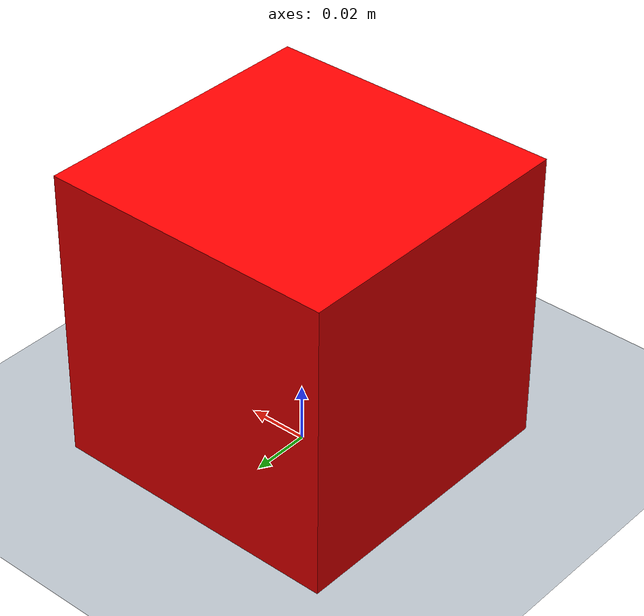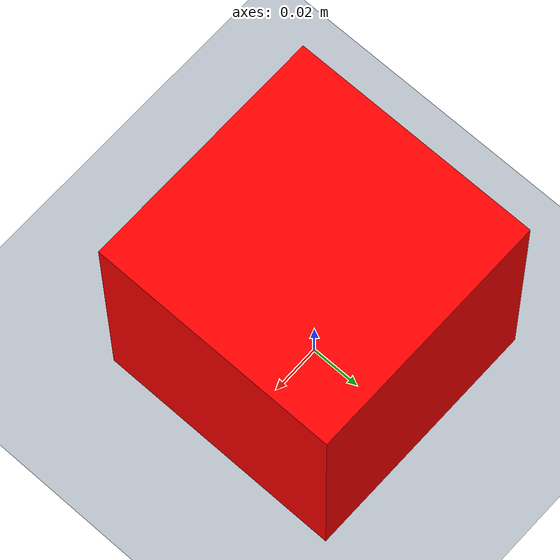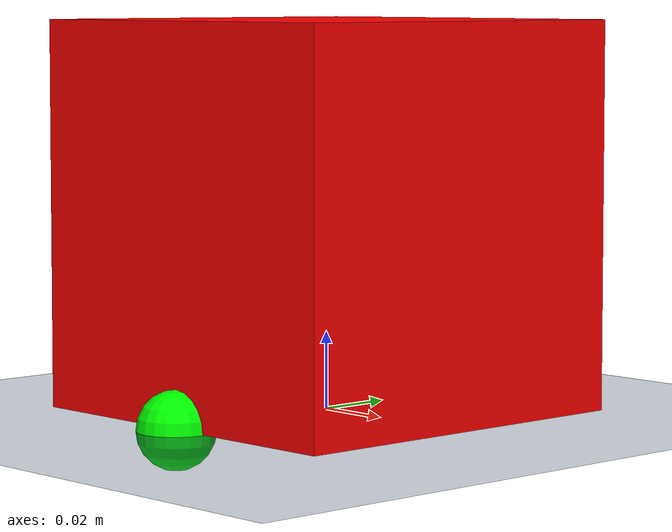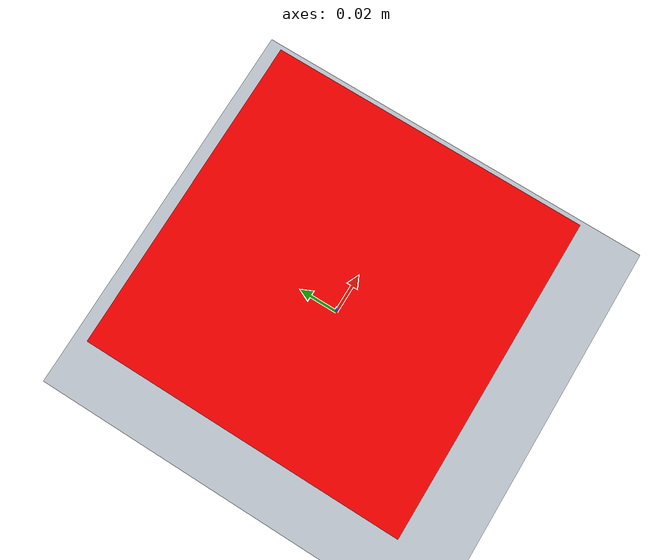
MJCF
<mujoco>
  <asset>
    <texture name="grid" type="2d" builtin="checker" rgb1=".1 .2 .3"
     rgb2=".2 .3 .4" width="300" height="300" mark="none"/>
    <material name="grid" texture="grid" texrepeat="6 6"
     texuniform="true" reflectance=".1"/>
     <material name="wall" rgba='.5 .5 .5 1'/>
  </asset>

  <worldbody>
    <light name="light" pos="-.2 0 1"/>
    <geom name="ground" type="plane" size=".5 .5 10" material="grid"
     zaxis="0 0 1" friction=".2"/>

    <body name="cart"  pos="0 0 .05" >
      <joint name = "x_joint" type="slide"  axis="1 0 0"/>
      <joint name = "z_joint" type="slide"  axis="0 0 1"/>
      <geom name="red_box" type="box" size=".05 .05 .05"
      friction="0.33" rgba="1 0 0 1"/>
      <site name="IMU"/>
    </body>

    <body name="target"  pos="0 0 0">
      <geom name="green_sphere" pos="0 -0.05 0" size=".01" rgba="0 1 0 1"
      contype="0" conaffinity="0"/>
      <joint name = "t_joint" type="slide"  axis="1 0 0"/>
    </body>

  </worldbody>

  <keyframe>
    <key name="exp1" qpos="-0.6 0 0" qvel="3 0 0"/>
  </keyframe>

  <sensor>
    <framepos name="sensor" objtype="xbody" objname="cart"/>
  </sensor>

  <actuator>
        <motor name="actuator" joint="x_joint" gear="1.5" />
    </actuator>

</mujoco>
